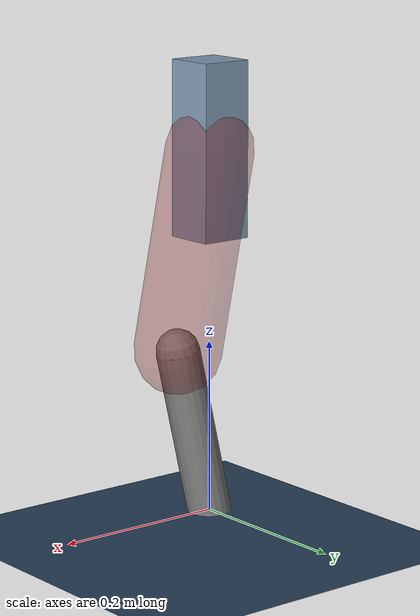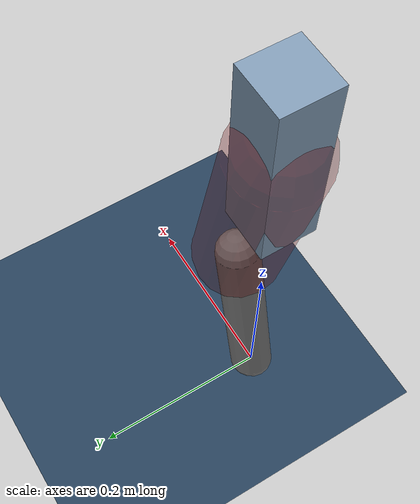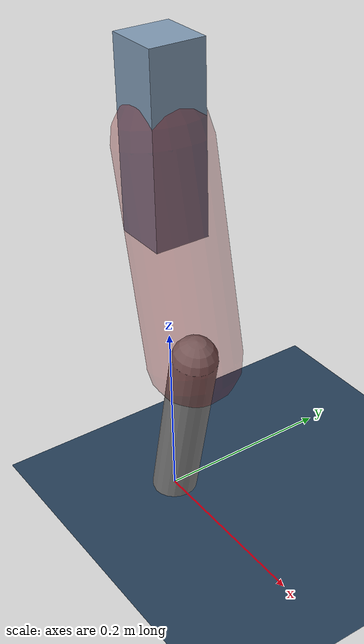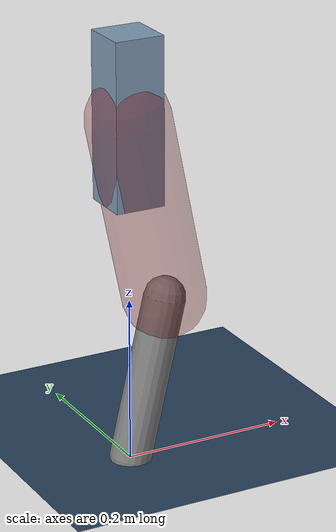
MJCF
<mujoco model="Hopper2D">
	<compiler inertiafromgeom="true" angle="radian" />
	<option timestep="0.001" integrator="implicit" cone="elliptic" solver="Newton" tolerance="1e-10" />

	<default>
		<geom contype="1" conaffinity="1" condim="3" friction="2 0.005 0.0001" solref="0.005 1" />
		<joint limited="true" damping="0.1" />
	</default>

	<asset>
		<texture name="skybox" type="skybox" builtin="gradient" rgb1=".4 .6 .8" rgb2="0 0 0" width="800" height="800" />
		<texture name="grid" type="2d" builtin="checker" rgb1=".1 .2 .3" rgb2=".2 .3 .4" width="300" height="300" mark="edge" markrgb=".2 .3 .4" />
		<material name="ground" texture="grid" texrepeat="1 1" texuniform="true" reflectance="0.1" />
		<material name="leg" rgba="0.5 0.6 0.7 1" />
	</asset>

	<worldbody>

		<geom name="floor" type="plane" size="5 5 0.25" material="ground" />

		<light directional="false" diffuse="0.8 0.8 0.8" specular="0.3 0.3 0.3" pos="0 0 2" dir="0 0 -1" />
		<light mode="targetbodycom" target="base" directional="false" diffuse="0.8 0.8 0.8" specular="0.3 0.3 0.3" pos="0 0 2" dir="0 0 -1" />

		<camera name="fixed" pos="0 -2 1" xyaxes="1 0 0 0 0 1" />
		<camera name="tracking" mode="trackcom" pos="0 -3 1" />

		<body name="root" pos="0 0 0.42094127858653907">
			<joint name="slide_x" type="slide" axis="1 0 0" range="-100 100" />
			<joint name="slide_z" type="slide" axis="0 0 1" range="0 10" />

			<body name="base" pos="0 0 0">
				<geom name="torso" type="box" size="0.03 0.03 0.1" mass="1.908" material="leg" />

				<body name="link1" pos="0 0 0" euler="0 1.368622719176436 0">
					<joint type="hinge" axis="0 -1 0" pos="0 0 0" name="hinge1" limited="true" range="-3.14 3.14" stiffness="0" damping="0.1" />
					<geom name="thigh" type="capsule" fromto="0 0 0 0.2293268079887934 0 0" size="0.05" rgba="0.5 0 0 0.3" mass="0.8033170199719835" />

					<body name="link2" pos="0.2293268079887934 0 0" euler="0 0.43260692475182994 0">
						<joint type="hinge" axis="0 -1 0" pos="0 0 0" name="hinge2" limited="true" range="-3.14 3.14" stiffness="0" damping="0.1" />
						<geom name="shank" type="capsule" fromto="0 0 0 0.20161447059774568 0 0" size="0.025" mass="0.4022530235379711" />

					</body>
				</body>
			</body>
		</body>
	</worldbody>

	<actuator>
		<motor name="torque1" joint="hinge1" ctrlrange="-36.018486633295 36.018486633295" ctrllimited="true" gear="1" />
		<motor name="torque2" joint="hinge2" ctrlrange="-23.942926330019123 23.942926330019123" ctrllimited="true" gear="1" />
	</actuator>
</mujoco>
